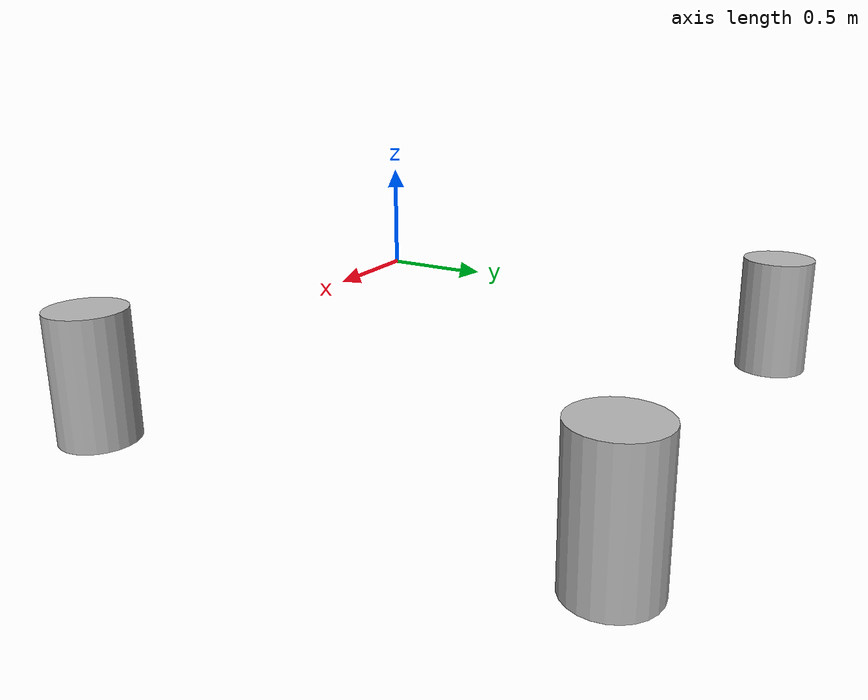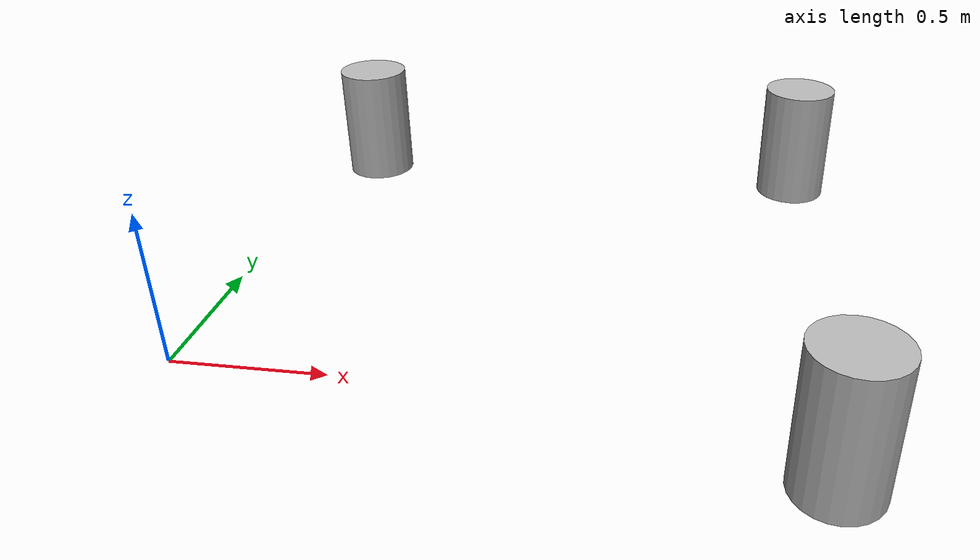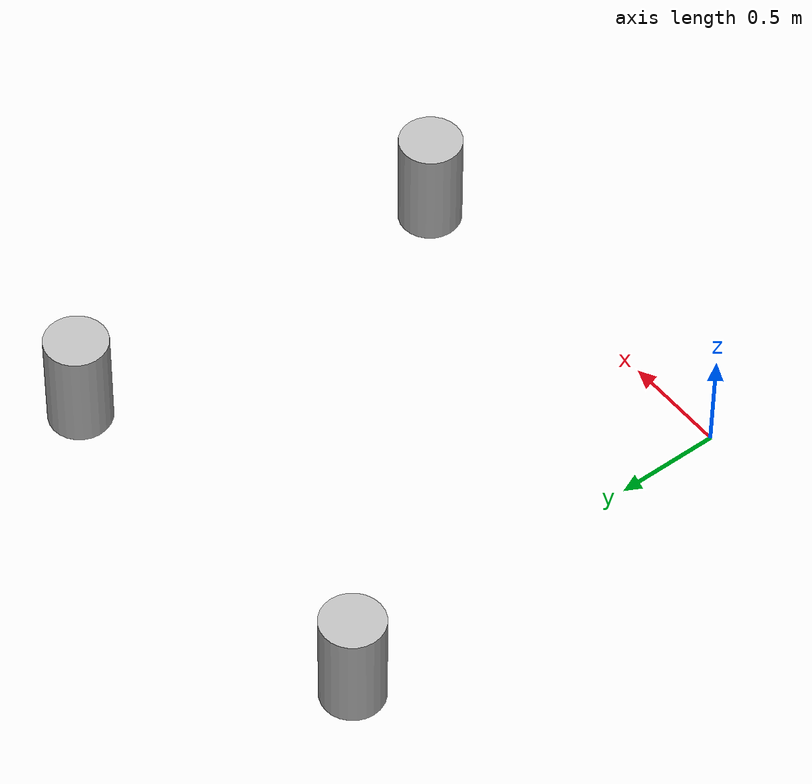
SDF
<?xml version="1.0"?>

<sdf version="1.6">
    <model name="asb_base">
      <pose>0.0 0.0 0.0 0.0 0.0 0.0</pose>

      <static>1</static>

      <link name='one_one'>
        <collision name='one_one'>
          <pose>2 2 0  0 0 0</pose>
          <geometry>
            <cylinder>
              <radius>0.15</radius>
              <length>0.5</length>
            </cylinder>
          </geometry>
          <max_contacts>10</max_contacts>
          <surface>
            <bounce/>
            <friction>
              <ode/>
            </friction>
            <contact>
              <ode/>
            </contact>
          </surface>
        </collision>
        <visual name='one_one'>
          <pose>2 2 0  0 0 0</pose>
          <geometry>
            <cylinder>
              <radius>0.15</radius>
              <length>0.5</length>
            </cylinder>
          </geometry>
        </visual>
      </link>

      <link name='zero_one'>
        <collision name='zero_one'>
          <pose>0 2 0  0 0 0</pose>
          <geometry>
            <cylinder>
              <radius>0.15</radius>
              <length>0.5</length>
            </cylinder>
          </geometry>
          <max_contacts>10</max_contacts>
          <surface>
            <bounce/>
            <friction>
              <ode/>
            </friction>
            <contact>
              <ode/>
            </contact>
          </surface>
        </collision>
        <visual name='zero_one'>
          <pose>0 2 0  0 0 0</pose>
          <geometry>
            <cylinder>
              <radius>0.15</radius>
              <length>0.5</length>
            </cylinder>
          </geometry>
        </visual>
      </link>

      <link name='one_zero'>
        <collision name='one_zero'>
          <pose>2 0 0  0 0 0</pose>
          <geometry>
            <cylinder>
              <radius>0.15</radius>
              <length>0.5</length>
            </cylinder>
          </geometry>
          <max_contacts>10</max_contacts>
          <surface>
            <bounce/>
            <friction>
              <ode/>
            </friction>
            <contact>
              <ode/>
            </contact>
          </surface>
        </collision>
        <visual name='one_zero'>
          <pose>2 0 0  0 0 0</pose>
          <geometry>
            <cylinder>
              <radius>0.15</radius>
              <length>0.5</length>
            </cylinder>
          </geometry>
        </visual>
      </link>

    </model>
</sdf>
